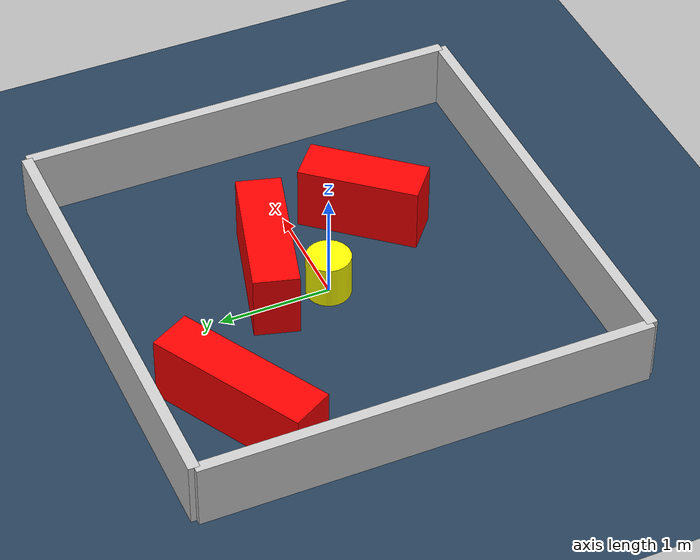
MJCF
<?xml version="1.0" ?>
<mujoco model="generated_environment">
  <option timestep="0.01" integrator="RK4" cone="elliptic"/>
  <default>
    <geom density="1"/>
  </default>
  <asset>
    <texture builtin="gradient" height="3072" rgb1="0.3 0.5 0.7" rgb2="0 0 0" type="skybox" width="512"/>
    <texture builtin="checker" height="300" mark="edge" markrgb="0.8 0.8 0.8" name="groundplane" rgb1="0.2 0.3 0.4" rgb2="0.1 0.2 0.3" type="2d" width="300"/>
    <material name="groundplane" reflectance="0.2" texrepeat="5 5" texture="groundplane" texuniform="true"/>
    <material name="robot" rgba="0.0 1.0 0.0 1"/>
  </asset>
  <worldbody>
    <light dir="0 0 -1" directional="true" pos="0 0 1.5"/>
    <geom condim="4" friction="1.0 0.005 0.001" material="groundplane" name="floor" size="0 0 0.05" type="plane"/>
    <body name="walls">
      <geom name="wall_1" condim="4" pos="-2.0 0.0 0.3" rgba="0.800000011920929 0.800000011920929 0.800000011920929 1.0" size="0.05 2.0 0.3" type="box"/>
      <geom name="wall_2" condim="4" pos="2.0 0.0 0.3" rgba="0.800000011920929 0.800000011920929 0.800000011920929 1.0" size="0.05 2.0 0.3" type="box"/>
      <geom name="wall_3" condim="4" pos="0.0 -2.0 0.3" rgba="0.800000011920929 0.800000011920929 0.800000011920929 1.0" size="2.0 0.05 0.3" type="box"/>
      <geom name="wall_4" condim="4" pos="0.0 2.0 0.3" rgba="0.800000011920929 0.800000011920929 0.800000011920929 1.0" size="2.0 0.05 0.3" type="box"/>
    </body>
    <body name="robot">
      <joint name="joint_x" type="slide" pos="0 0 0" axis="1 0 0"/>
      <joint name="joint_y" type="slide" pos="0 0 0" axis="0 1 0"/>
      <geom name="robot" type="sphere" pos="0.3 0.0 0.2" size="0.05" mass="5." friction="1.0 0.005 0.0001" condim="4" rgba="0.5 0.5 0.5 1.0"/>
      <site name="sensor_ball"/>
    </body>
    <body name="obstacle_movable_1">
      <geom name="obstacle_movable_1" condim="4" pos="0.0 0.0 0.2" euler="0 0 0.0" friction="1.0 0.005 0.001" rgba="1.0 1.0 0.0 1.0" size="0.2 0.2 0.0" type="cylinder" mass="0.1"/>
      <joint type="free"/>
    </body>
    <body name="obstacle_2_static">
      <geom name="obstacle_2_static" condim="4" pos="0.3117724599086422 0.4311215450541275 0.3" euler="0 0 344.28513579952585" friction="1.0 0.005 0.001" rgba="1 0 0 1" size="0.6513442128429969 0.2 0.3" type="box"/>
    </body>
    <body name="obstacle_3_static">
      <geom name="obstacle_3_static" condim="4" pos="-1.1401348724443594 1.2693648963597532 0.3" euler="0 0 28.961331511184266" friction="1.0 0.005 0.001" rgba="1 0 0 1" size="0.740755771560913 0.2 0.3" type="box"/>
    </body>
    <body name="obstacle_4_static">
      <geom name="obstacle_4_static" condim="4" pos="0.6927288603336561 -0.6365666065232745 0.3" euler="0 0 49.56342778137604" friction="1.0 0.005 0.001" rgba="1 0 0 1" size="0.5414534732651904 0.2 0.3" type="box"/>
    </body>
  </worldbody>
  <actuator>
    <motor name="actuator_x" joint="joint_x" gear="1" ctrlrange="-1 1"/>
    <motor name="actuator_y" joint="joint_y" gear="1" ctrlrange="-1 1"/>
  </actuator>
</mujoco>
